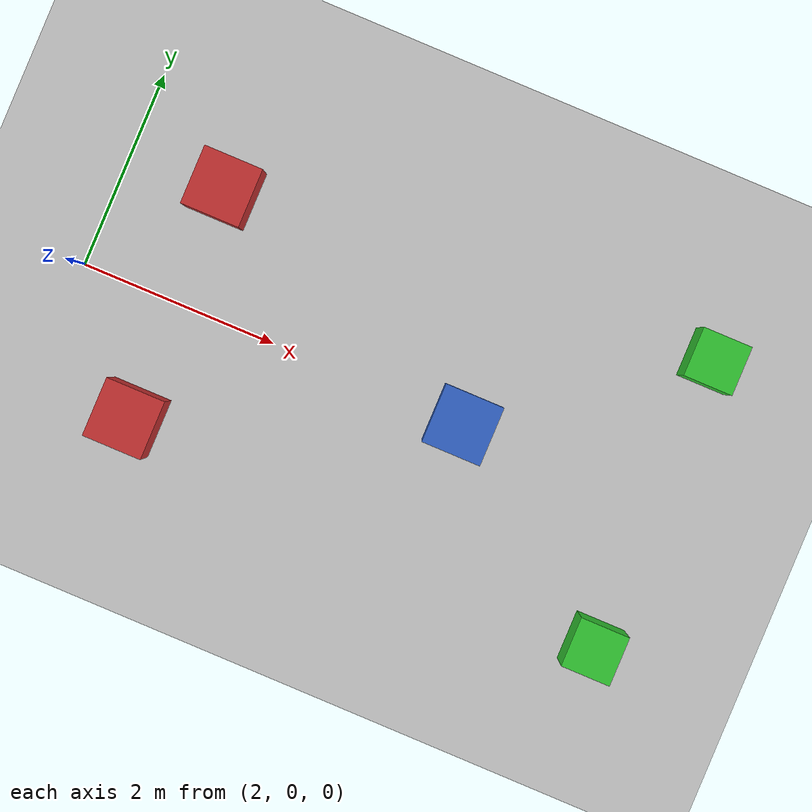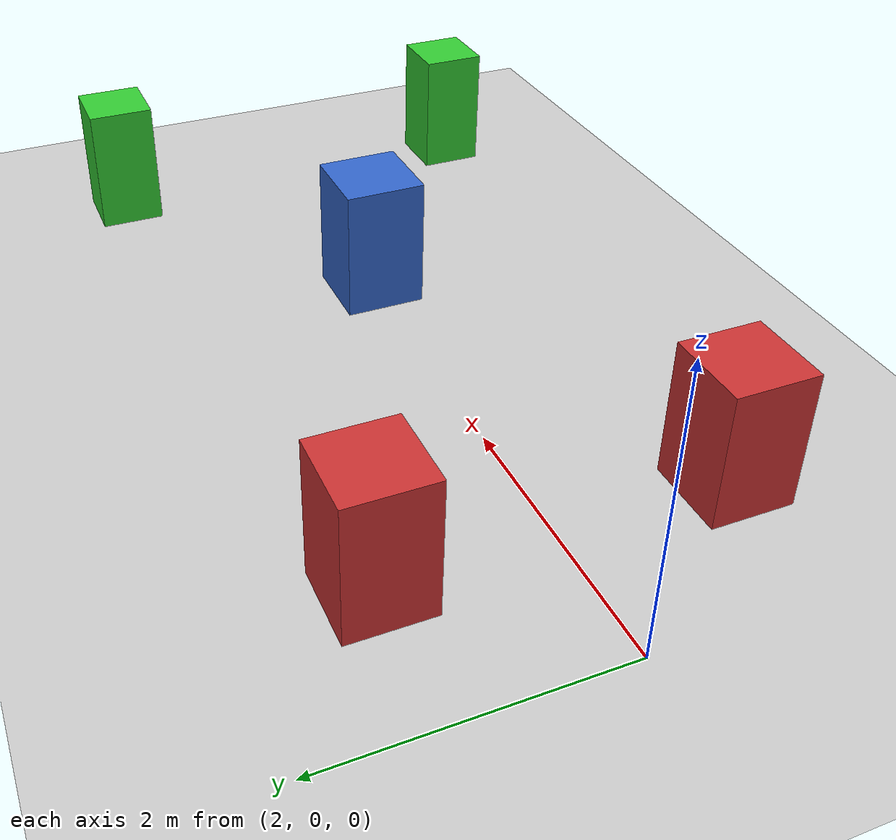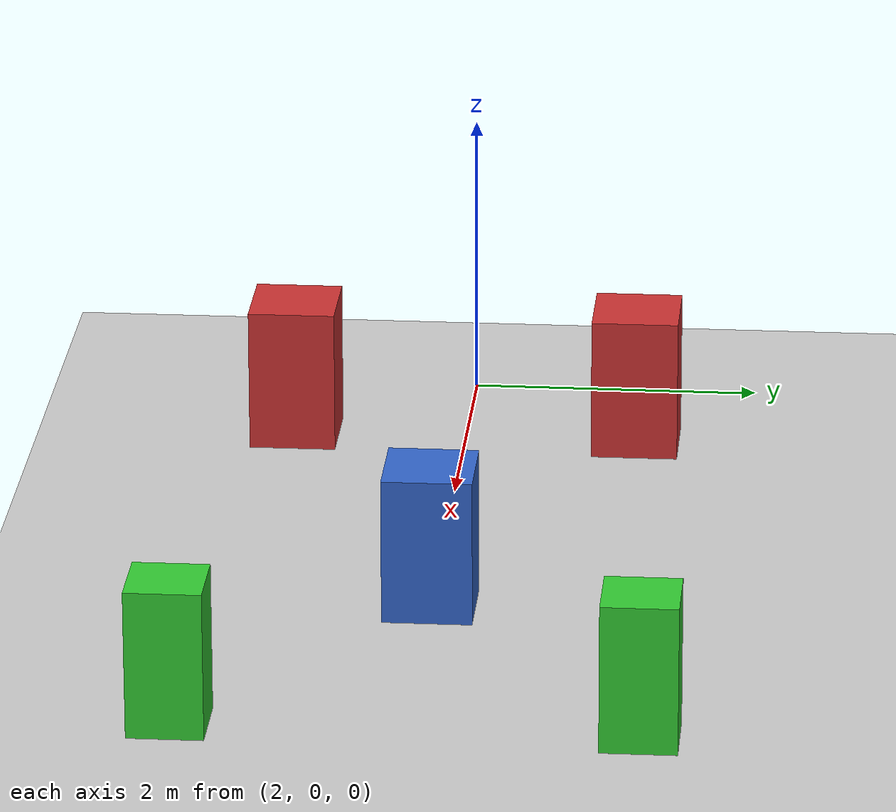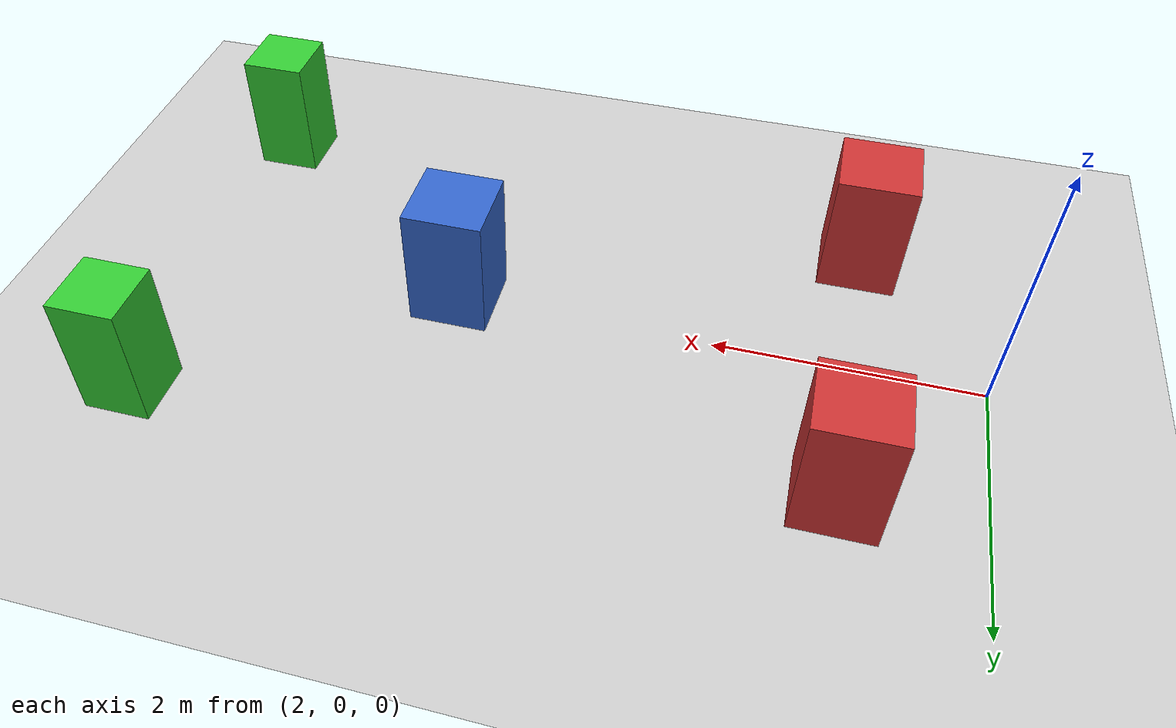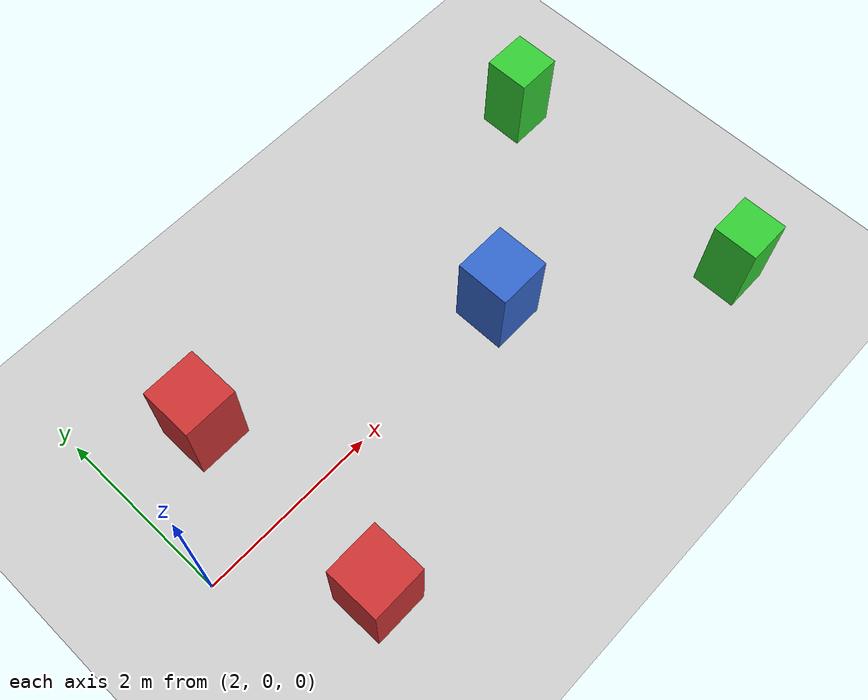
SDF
<?xml version="1.0"?>
<sdf version="1.6">
  <world name="test">
    <include>
      <uri>model://sun</uri>
    </include>
    <include>
      <uri>model://ground_plane</uri>
    </include>

    <physics type="ode">
      <max_step_size>0.001</max_step_size>
      <real_time_factor>1</real_time_factor>
      <real_time_update_rate>1000</real_time_update_rate>
    </physics>

    <!-- Left wall -->

    <!-- Right wall -->

    <!-- Box obstacle A -->
    <model name="box_A">
      <static>true</static>
      <pose>3 1.2 0.5 0 0 0</pose>
      <link name="link">
        <collision name="collision">
          <geometry><box><size>0.6 0.6 1.0</size></box></geometry>
        </collision>
        <visual name="visual">
          <geometry><box><size>0.6 0.6 1.0</size></box></geometry>
          <material><ambient>0.8 0.2 0.2 1</ambient></material>
        </visual>
      </link>
    </model>

    <!-- Box obstacle B -->
    <model name="box_B">
      <static>true</static>
      <pose>3 -1.2 0.5 0 0 0</pose>
      <link name="link">
        <collision name="collision">
          <geometry><box><size>0.6 0.6 1.0</size></box></geometry>
        </collision>
        <visual name="visual">
          <geometry><box><size>0.6 0.6 1.0</size></box></geometry>
          <material><ambient>0.8 0.2 0.2 1</ambient></material>
        </visual>
      </link>
    </model>

    <!-- Box obstacle C -->
    <model name="box_C">
      <static>true</static>
      <pose>6 0 0.5 0 0 0</pose>
      <link name="link">
        <collision name="collision">
          <geometry><box><size>0.6 0.6 1.0</size></box></geometry>
        </collision>
        <visual name="visual">
          <geometry><box><size>0.6 0.6 1.0</size></box></geometry>
          <material><ambient>0.2 0.4 0.8 1</ambient></material>
        </visual>
      </link>
    </model>

    <!-- Box obstacle D -->
    <model name="box_D">
      <static>true</static>
      <pose>8 1.5 0.5 0 0 0</pose>
      <link name="link">
        <collision name="collision">
          <geometry><box><size>0.5 0.5 1.0</size></box></geometry>
        </collision>
        <visual name="visual">
          <geometry><box><size>0.5 0.5 1.0</size></box></geometry>
          <material><ambient>0.2 0.8 0.2 1</ambient></material>
        </visual>
      </link>
    </model>

    <!-- Box obstacle E -->
    <model name="box_E">
      <static>true</static>
      <pose>8 -1.5 0.5 0 0 0</pose>
      <link name="link">
        <collision name="collision">
          <geometry><box><size>0.5 0.5 1.0</size></box></geometry>
        </collision>
        <visual name="visual">
          <geometry><box><size>0.5 0.5 1.0</size></box></geometry>
          <material><ambient>0.2 0.8 0.2 1</ambient></material>
        </visual>
      </link>
    </model>

  </world>
</sdf>
